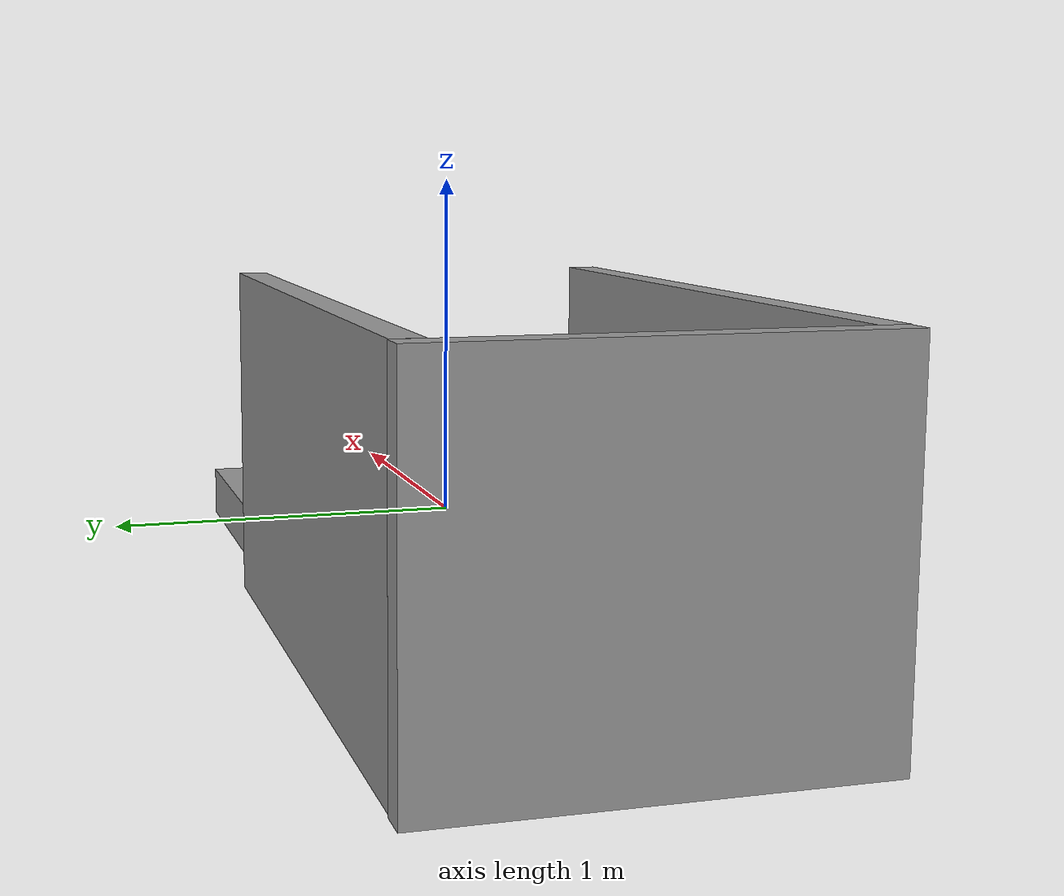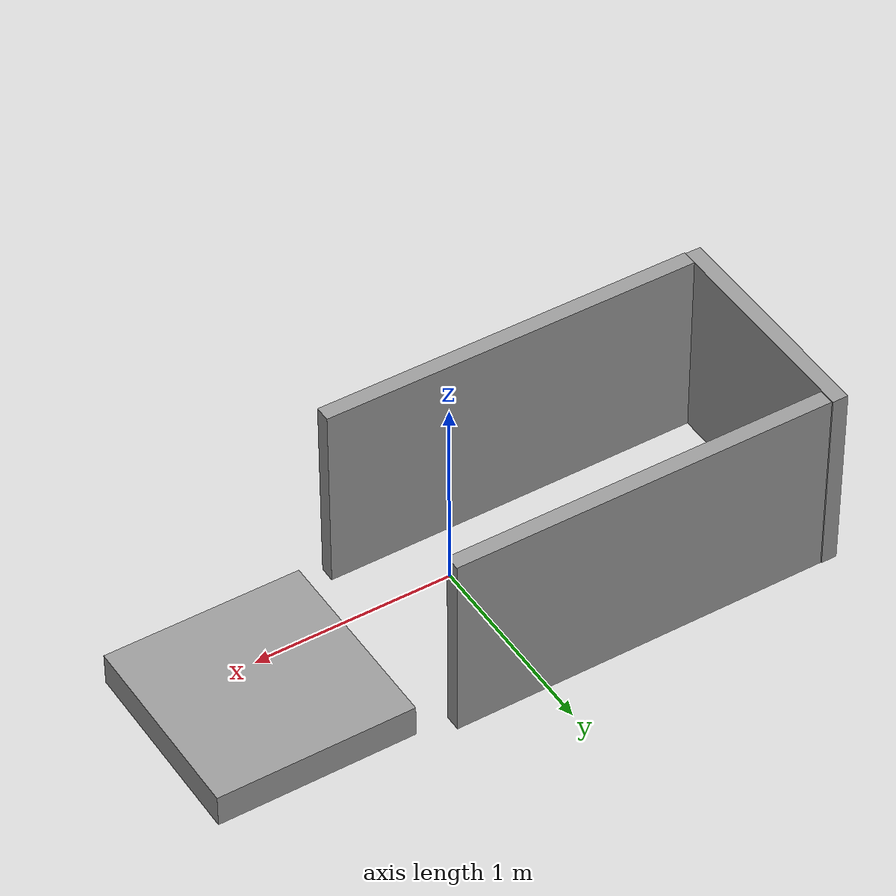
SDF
<?xml version='1.0'?>
<sdf version='1.6'>
  <model name='ramp2'>
    <link name='link_0'>
      <inertial>
        <mass>0.168836</mass>
        <inertia>
          <ixx>0.0144707</ixx>
          <ixy>0</ixy>
          <ixz>0</ixz>
          <iyy>0.0144707</iyy>
          <iyz>0</iyz>
          <izz>0.0281393</izz>
        </inertia>
        <pose frame=''>0 0 0 0 -0 0</pose>
      </inertial>
      <pose frame=''>0.989487 0.002323 -0.208567 0 -0 0</pose>
      <visual name='visual'>
        <pose frame=''>0 0 0 0 -0 0</pose>
        <geometry>
          <box>
            <size>1 1 0.168844</size>
          </box>
        </geometry>
        <material>
          <lighting>1</lighting>
          <script>
            <uri>file://media/materials/scripts/gazebo.material</uri>
            <name>Gazebo/Grey</name>
          </script>
        </material>
        <transparency>0</transparency>
        <cast_shadows>1</cast_shadows>
      </visual>
      <collision name='collision'>
        <laser_retro>0</laser_retro>
        <max_contacts>10</max_contacts>
        <pose frame=''>0 0 0 0 -0 0</pose>
        <geometry>
          <box>
            <size>1 1 0.168844</size>
          </box>
        </geometry>
        <surface>
          <friction>
            <ode>
              <mu>1</mu>
              <mu2>1</mu2>
              <fdir1>0 0 0</fdir1>
              <slip1>0</slip1>
              <slip2>0</slip2>
            </ode>
            <torsional>
              <coefficient>1</coefficient>
              <patch_radius>0</patch_radius>
              <surface_radius>0</surface_radius>
              <use_patch_radius>1</use_patch_radius>
              <ode>
                <slip>0</slip>
              </ode>
            </torsional>
          </friction>
          <bounce>
            <restitution_coefficient>0</restitution_coefficient>
            <threshold>1e+06</threshold>
          </bounce>
          <contact>
            <collide_without_contact>0</collide_without_contact>
            <collide_without_contact_bitmask>1</collide_without_contact_bitmask>
            <collide_bitmask>1</collide_bitmask>
            <ode>
              <soft_cfm>0</soft_cfm>
              <soft_erp>0.2</soft_erp>
              <kp>1e+13</kp>
              <kd>1</kd>
              <max_vel>0.01</max_vel>
              <min_depth>0</min_depth>
            </ode>
            <bullet>
              <split_impulse>1</split_impulse>
              <split_impulse_penetration_threshold>-0.01</split_impulse_penetration_threshold>
              <soft_cfm>0</soft_cfm>
              <soft_erp>0.2</soft_erp>
              <kp>1e+13</kp>
              <kd>1</kd>
            </bullet>
          </contact>
        </surface>
      </collision>
    </link>
    <link name='link_1'>
      <inertial>
        <mass>0.156603</mass>
        <inertia>
          <ixx>0.0131351</ixx>
          <ixy>0</ixy>
          <ixz>0</ixz>
          <iyy>0.0623079</iyy>
          <iyz>0</iyz>
          <izz>0.0493424</izz>
        </inertia>
        <pose frame=''>0 0 0 0 -0 0</pose>
      </inertial>
      <pose frame=''>-0.655557 -0.547381 0.211644 0 -0 0</pose>
      <visual name='visual'>
        <pose frame=''>0 0 0 0 -0 0</pose>
        <geometry>
          <box>
            <size>1.94279 0.08063 1</size>
          </box>
        </geometry>
        <material>
          <lighting>1</lighting>
          <script>
            <uri>file://media/materials/scripts/gazebo.material</uri>
            <name>Gazebo/Grey</name>
          </script>
        </material>
        <transparency>0</transparency>
        <cast_shadows>1</cast_shadows>
      </visual>
      <collision name='collision'>
        <laser_retro>0</laser_retro>
        <max_contacts>10</max_contacts>
        <pose frame=''>0 0 0 0 -0 0</pose>
        <geometry>
          <box>
            <size>1.94279 0.08063 1</size>
          </box>
        </geometry>
        <surface>
          <friction>
            <ode>
              <mu>1</mu>
              <mu2>1</mu2>
              <fdir1>0 0 0</fdir1>
              <slip1>0</slip1>
              <slip2>0</slip2>
            </ode>
            <torsional>
              <coefficient>1</coefficient>
              <patch_radius>0</patch_radius>
              <surface_radius>0</surface_radius>
              <use_patch_radius>1</use_patch_radius>
              <ode>
                <slip>0</slip>
              </ode>
            </torsional>
          </friction>
          <bounce>
            <restitution_coefficient>0</restitution_coefficient>
            <threshold>1e+06</threshold>
          </bounce>
          <contact>
            <collide_without_contact>0</collide_without_contact>
            <collide_without_contact_bitmask>1</collide_without_contact_bitmask>
            <collide_bitmask>1</collide_bitmask>
            <ode>
              <soft_cfm>0</soft_cfm>
              <soft_erp>0.2</soft_erp>
              <kp>1e+13</kp>
              <kd>1</kd>
              <max_vel>0.01</max_vel>
              <min_depth>0</min_depth>
            </ode>
            <bullet>
              <split_impulse>1</split_impulse>
              <split_impulse_penetration_threshold>-0.01</split_impulse_penetration_threshold>
              <soft_cfm>0</soft_cfm>
              <soft_erp>0.2</soft_erp>
              <kp>1e+13</kp>
              <kd>1</kd>
            </bullet>
          </contact>
        </surface>
      </collision>
    </link>
    <link name='link_1_clone'>
      <inertial>
        <mass>0.156603</mass>
        <inertia>
          <ixx>0.0131351</ixx>
          <ixy>0</ixy>
          <ixz>0</ixz>
          <iyy>0.0623079</iyy>
          <iyz>0</iyz>
          <izz>0.0493424</izz>
        </inertia>
        <pose frame=''>0 0 0 0 -0 0</pose>
      </inertial>
      <pose frame=''>-0.649802 0.538073 0.211644 0 0 -0.001678</pose>
      <visual name='visual'>
        <pose frame=''>0 0 0 0 -0 0</pose>
        <geometry>
          <box>
            <size>1.94279 0.08063 1</size>
          </box>
        </geometry>
        <material>
          <lighting>1</lighting>
          <script>
            <uri>file://media/materials/scripts/gazebo.material</uri>
            <name>Gazebo/Grey</name>
          </script>
          <shader type='pixel'/>
        </material>
        <transparency>0</transparency>
        <cast_shadows>1</cast_shadows>
      </visual>
      <collision name='collision'>
        <laser_retro>0</laser_retro>
        <max_contacts>10</max_contacts>
        <pose frame=''>0 0 0 0 -0 0</pose>
        <geometry>
          <box>
            <size>1.94279 0.08063 1</size>
          </box>
        </geometry>
        <surface>
          <friction>
            <ode>
              <mu>1</mu>
              <mu2>1</mu2>
              <fdir1>0 0 0</fdir1>
              <slip1>0</slip1>
              <slip2>0</slip2>
            </ode>
            <torsional>
              <coefficient>1</coefficient>
              <patch_radius>0</patch_radius>
              <surface_radius>0</surface_radius>
              <use_patch_radius>1</use_patch_radius>
              <ode>
                <slip>0</slip>
              </ode>
            </torsional>
          </friction>
          <bounce>
            <restitution_coefficient>0</restitution_coefficient>
            <threshold>1e+06</threshold>
          </bounce>
          <contact>
            <collide_without_contact>0</collide_without_contact>
            <collide_without_contact_bitmask>1</collide_without_contact_bitmask>
            <collide_bitmask>1</collide_bitmask>
            <ode>
              <soft_cfm>0</soft_cfm>
              <soft_erp>0.2</soft_erp>
              <kp>1e+13</kp>
              <kd>1</kd>
              <max_vel>0.01</max_vel>
              <min_depth>0</min_depth>
            </ode>
            <bullet>
              <split_impulse>1</split_impulse>
              <split_impulse_penetration_threshold>-0.01</split_impulse_penetration_threshold>
              <soft_cfm>0</soft_cfm>
              <soft_erp>0.2</soft_erp>
              <kp>1e+13</kp>
              <kd>1</kd>
            </bullet>
          </contact>
        </surface>
      </collision>
    </link>
    <link name='link_1_clone_clone'>
      <inertial>
        <mass>0.093926</mass>
        <inertia>
          <ixx>0.00787805</ixx>
          <ixy>0</ixy>
          <ixz>0</ixz>
          <iyy>0.0184546</iyy>
          <iyz>0</iyz>
          <izz>0.0106783</izz>
        </inertia>
        <pose frame=''>0 0 0 0 -0 0</pose>
      </inertial>
      <pose frame=''>-1.66525 0.001569 0.211644 0 0 -1.57214</pose>
      <visual name='visual'>
        <pose frame=''>0 0 0 0 -0 0</pose>
        <geometry>
          <box>
            <size>1.16523 0.08063 1</size>
          </box>
        </geometry>
        <material>
          <lighting>1</lighting>
          <script>
            <uri>file://media/materials/scripts/gazebo.material</uri>
            <name>Gazebo/Grey</name>
          </script>
          <shader type='pixel'/>
        </material>
        <transparency>0</transparency>
        <cast_shadows>1</cast_shadows>
      </visual>
      <collision name='collision'>
        <laser_retro>0</laser_retro>
        <max_contacts>10</max_contacts>
        <pose frame=''>0 0 0 0 -0 0</pose>
        <geometry>
          <box>
            <size>1.16523 0.08063 1</size>
          </box>
        </geometry>
        <surface>
          <friction>
            <ode>
              <mu>1</mu>
              <mu2>1</mu2>
              <fdir1>0 0 0</fdir1>
              <slip1>0</slip1>
              <slip2>0</slip2>
            </ode>
            <torsional>
              <coefficient>1</coefficient>
              <patch_radius>0</patch_radius>
              <surface_radius>0</surface_radius>
              <use_patch_radius>1</use_patch_radius>
              <ode>
                <slip>0</slip>
              </ode>
            </torsional>
          </friction>
          <bounce>
            <restitution_coefficient>0</restitution_coefficient>
            <threshold>1e+06</threshold>
          </bounce>
          <contact>
            <collide_without_contact>0</collide_without_contact>
            <collide_without_contact_bitmask>1</collide_without_contact_bitmask>
            <collide_bitmask>1</collide_bitmask>
            <ode>
              <soft_cfm>0</soft_cfm>
              <soft_erp>0.2</soft_erp>
              <kp>1e+13</kp>
              <kd>1</kd>
              <max_vel>0.01</max_vel>
              <min_depth>0</min_depth>
            </ode>
            <bullet>
              <split_impulse>1</split_impulse>
              <split_impulse_penetration_threshold>-0.01</split_impulse_penetration_threshold>
              <soft_cfm>0</soft_cfm>
              <soft_erp>0.2</soft_erp>
              <kp>1e+13</kp>
              <kd>1</kd>
            </bullet>
          </contact>
        </surface>
      </collision>
    </link>
    <static>1</static>
    <allow_auto_disable>1</allow_auto_disable>
  </model>
</sdf>
